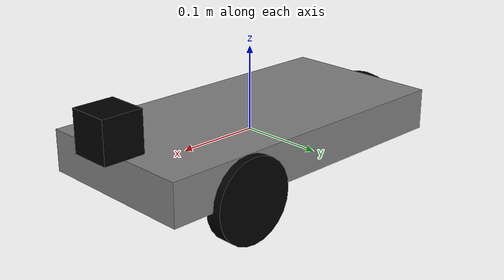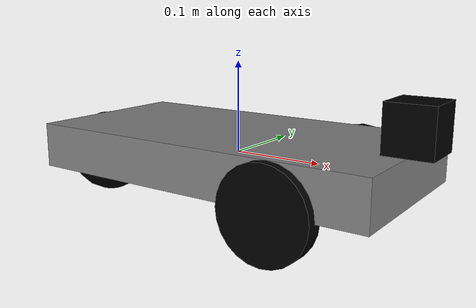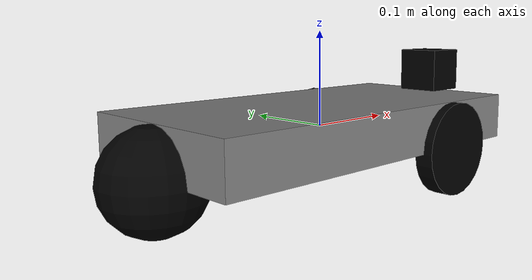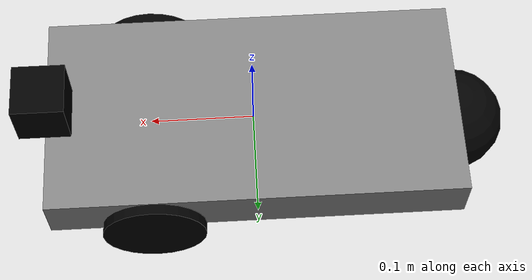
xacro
<?xml version="1.0"?>
<robot name="ros_car" xmlns:xacro="http://ros.org/wiki/xacro">

  <!-- Local Params -->
  <xacro:property name="chassis_height" value="0.05"/>
  <xacro:property name="base_length" value="0.4"/>
  <xacro:property name="base_width" value="0.2"/>
  <xacro:property name="wheel_radius" value="0.05"/>
  <xacro:property name="wheel_width" value="0.02"/>
  <xacro:property name="wheel_separation" value="0.3"/>

  <!-- Materials -->
  <material name="black">
    <color rgba="0.0 0.0 0.0 1.0"/>
  </material>

  <material name="grey">
    <color rgba="0.5 0.5 0.5 1.0"/>
  </material>

  <!-- Main Loom -->
  <link name="base_link">
    <visual>
      <geometry>
        <box size="${base_length} ${base_width} ${chassis_height}"/>
      </geometry>
      <material name="grey"/>
    </visual>
    <collision>
      <geometry>
        <box size="${base_length} ${base_width} ${chassis_height}"/>
      </geometry>
    </collision>
    <inertial>
      <mass value="2.0"/>
      <inertia ixx="0.1" ixy="0.0" ixz="0.0"
               iyy="0.1" iyz="0.0" izz="0.1"/>
    </inertial>
  </link>

  <!-- Scanner -->
  <link name="laser_link">
    <visual>
      <geometry>
        <box size="0.05 0.05 0.05"/>
      </geometry>
      <material name="black"/>
    </visual>
    <collision>
      <geometry>
        <box size="0.05 0.05 0.05"/>
      </geometry>
    </collision>
    <inertial>
      <mass value="0.05"/>
      <inertia ixx="0.0001" ixy="0.0" ixz="0.0"
               iyy="0.0001" iyz="0.0" izz="0.0001"/>
    </inertial>
  </link>

  <joint name="joint_laser_link" type="fixed">
    <parent link="base_link"/>
    <child link="laser_link"/>
    <origin xyz="0.2 0 0.05" rpy="0 0 0"/>
  </joint>

  <!-- Left Wheel -->
  <link name="wheel_left">
    <visual>
      <geometry>
        <cylinder radius="${wheel_radius}" length="${wheel_width}"/>
      </geometry>
      <material name="black"/>
      <origin rpy="${pi/2} 0 0"/>
    </visual>
    <collision>
      <geometry>
        <cylinder radius="${wheel_radius}" length="${wheel_width}"/>
      </geometry>
      <origin rpy="${pi/2} 0 0"/>
    </collision>
    <inertial>
      <mass value="0.1"/>
      <inertia ixx="0.001" ixy="0.0" ixz="0.0"
              iyy="0.001" iyz="0.0" izz="0.001"/>
    </inertial>
  </link>

  <joint name="joint_wheel_left" type="continuous">
    <parent link="base_link"/>
    <child link="wheel_left"/>
    <origin xyz="${base_length/4} ${wheel_separation/3} -${chassis_height/2}" rpy="0 0 0"/>
    <dynamics damping="0.1" friction="0.1"/>
    <axis xyz="0 1 0"/>
  </joint>

  <!-- Right Wheel -->
  <link name="wheel_right">
    <visual>
      <geometry>
        <cylinder radius="${wheel_radius}" length="${wheel_width}"/>
      </geometry>
      <material name="black"/>
      <origin rpy="${pi/2} 0 0"/>
    </visual>
    <collision>
      <geometry>
        <cylinder radius="${wheel_radius}" length="${wheel_width}"/>
      </geometry>
      <origin rpy="${pi/2} 0 0"/>
    </collision>
    <inertial>
      <mass value="0.1"/>
      <inertia ixx="0.001" ixy="0.0" ixz="0.0"
              iyy="0.001" iyz="0.0" izz="0.001"/>
    </inertial>
  </link>

  <joint name="joint_wheel_right" type="continuous">
    <parent link="base_link"/>
    <child link="wheel_right"/>
    <origin xyz="${base_length/4} -${wheel_separation/3} -${chassis_height/2}" rpy="0 0 0"/>
    <dynamics damping="0.1" friction="0.1"/>
    <axis xyz="0 1 0"/>
  </joint>

  <!-- Passive Back Wheels (caster) -->
  <link name="caster_wheel">
    <visual>
      <geometry>
        <sphere radius="0.05"/>
      </geometry>
      <material name="black"/>
    </visual>
    <collision>
      <geometry>
        <sphere radius="0.05"/>
      </geometry>
    </collision>
    <inertial>
      <mass value="0.05"/>
      <inertia ixx="0.0001" ixy="0.0" ixz="0.0"
               iyy="0.0001" iyz="0.0" izz="0.0001"/>
    </inertial>
  </link>

  <joint name="joint_caster" type="fixed">
    <parent link="base_link"/>
    <child link="caster_wheel"/>
    <origin xyz="-${base_length/2} 0 -0.025" rpy="0 0 0"/>
  </joint>

  <!-- Plugins -->
  <gazebo reference="laser_link">
    <sensor type="ray" name="laser_sensor">
      <alwaysOn>true</alwaysOn>						      <!-- Keep sensor active -->
      <update_rate>20</update_rate>					    <!-- Publish at 20 Hz -->
      <visualize>true</visualize>						    <!-- Show beams in Gazebo -->
      <topicName>scan</topicName>						    <!-- ROS topic for LaserScan -->
      <pose>0 0 0 0 0 0</pose>						      <!-- Sensor pose relative to link -->
      <ray>
        <scan>
          <horizontal>
            <samples>360</samples>					    <!-- Number of beams -->
            <resolution>1</resolution>				  <!-- Subdivisions between beams -->
            <min_angle>-3.1416</min_angle>      <!-- -180° rads -->
            <max_angle>3.1416</max_angle>       <!-- +180° rads -->
          </horizontal>
        </scan>
        <range>
          <min>0.12</min>						            <!-- Minimum detect distance (m) -->
          <max>2.0</max>						            <!-- Maximum detect distance (m) -->
          <resolution>0.01</resolution>				  <!-- Range resolution (m) -->
        </range>
        <noise>
          <type>gaussian</type>					        <!-- Noise model type -->
          <mean>0.0</mean>						          <!-- Mean of noise -->
          <stddev>0.01</stddev>					        <!-- Standard deviation of noise -->
        </noise>
      </ray>
      <plugin name="gazebo_ros_laser_controller" filename="libgazebo_ros_laser.so">
        <topicName>scan</topicName>					    <!-- Same ROS topic name -->
        <frameName>laser_link</frameName>				<!-- Laser data frame -->
      </plugin>
    </sensor>
  </gazebo>

  <gazebo>
    <plugin name="diff_drive_controller" filename="libgazebo_ros_diff_drive.so">
      <ros>
        <namespace>/</namespace>					                      <!-- ROS namespace -->
        <remapping>odom:=/odom</remapping>				              <!-- Remap /odom topic -->
        <remapping>cmd_vel:=/cmd_vel</remapping>			          <!-- Remap /cmd_vel topic -->
      </ros>
      <publishOdom>true</publishOdom>					                  <!-- Publish odometry messages -->
      <publishTf>true</publishTf>						                    <!-- Publish TF transforms -->
      <publishOdomTF>true</publishOdomTF>				                <!-- Publish odom->base_link TF -->
      <publishWheelTF>false</publishWheelTF>				            <!-- No wheel TF broadcast -->
      <publishWheelJointState>true</publishWheelJointState>			<!-- Publish wheel joint states -->
      <commandTimeout>1.0</commandTimeout>				              <!-- Stop if no cmd_vel after 1s -->
      <wheelTorque>5.0</wheelTorque>					                  <!-- Max torque on wheels -->
      <wheelAcceleration>0.0</wheelAcceleration>				        <!-- Max wheel acceleration (0=unlimited) -->
      <wheelDiameter>${2 * wheel_radius}</wheelDiameter>			  <!-- Wheel diameter (m) -->
      <wheelSeparation>${wheel_separation}</wheelSeparation>		<!-- Distance between wheels (m) -->
      <robotBaseFrame>base_link</robotBaseFrame>				        <!-- Robot's main reference frame -->
      <odometryFrame>odom</odometryFrame>					              <!-- Frame for odom data -->
      <odometryTopic>odom</odometryTopic>					              <!-- Topic for odom data -->
      <commandTopic>cmd_vel</commandTopic>					            <!-- Topic for velocity cmds -->
      <leftJoint>joint_wheel_left</leftJoint>				            <!-- Name of the left joint -->
      <rightJoint>joint_wheel_right</rightJoint>				        <!-- Name of the right joint -->
      <rosDebugLevel>INFO</rosDebugLevel>					              <!-- Debug level -->
      <updateRate>60</updateRate>					                      <!-- Update frequency (Hz) -->
    </plugin>
  </gazebo>
</robot>
